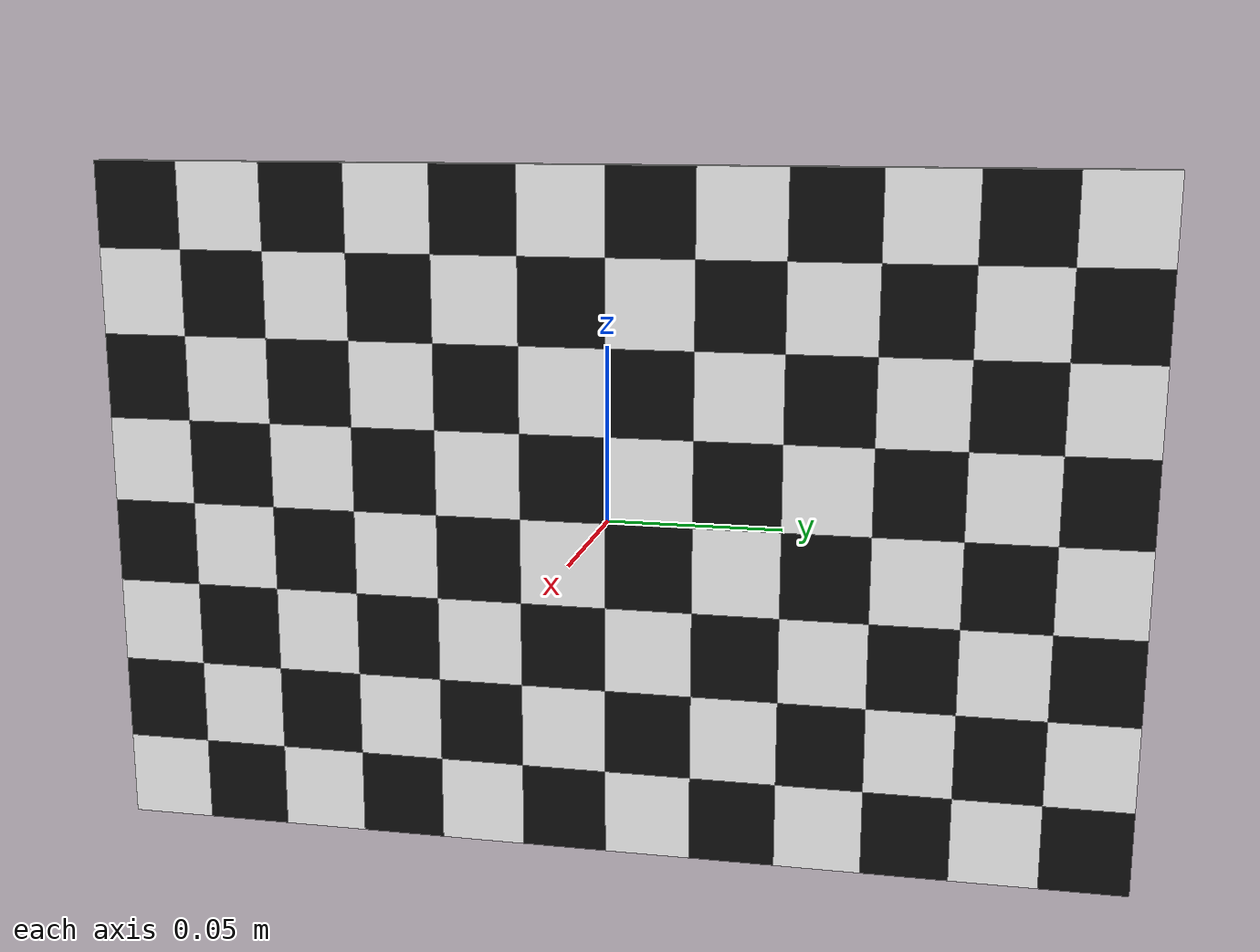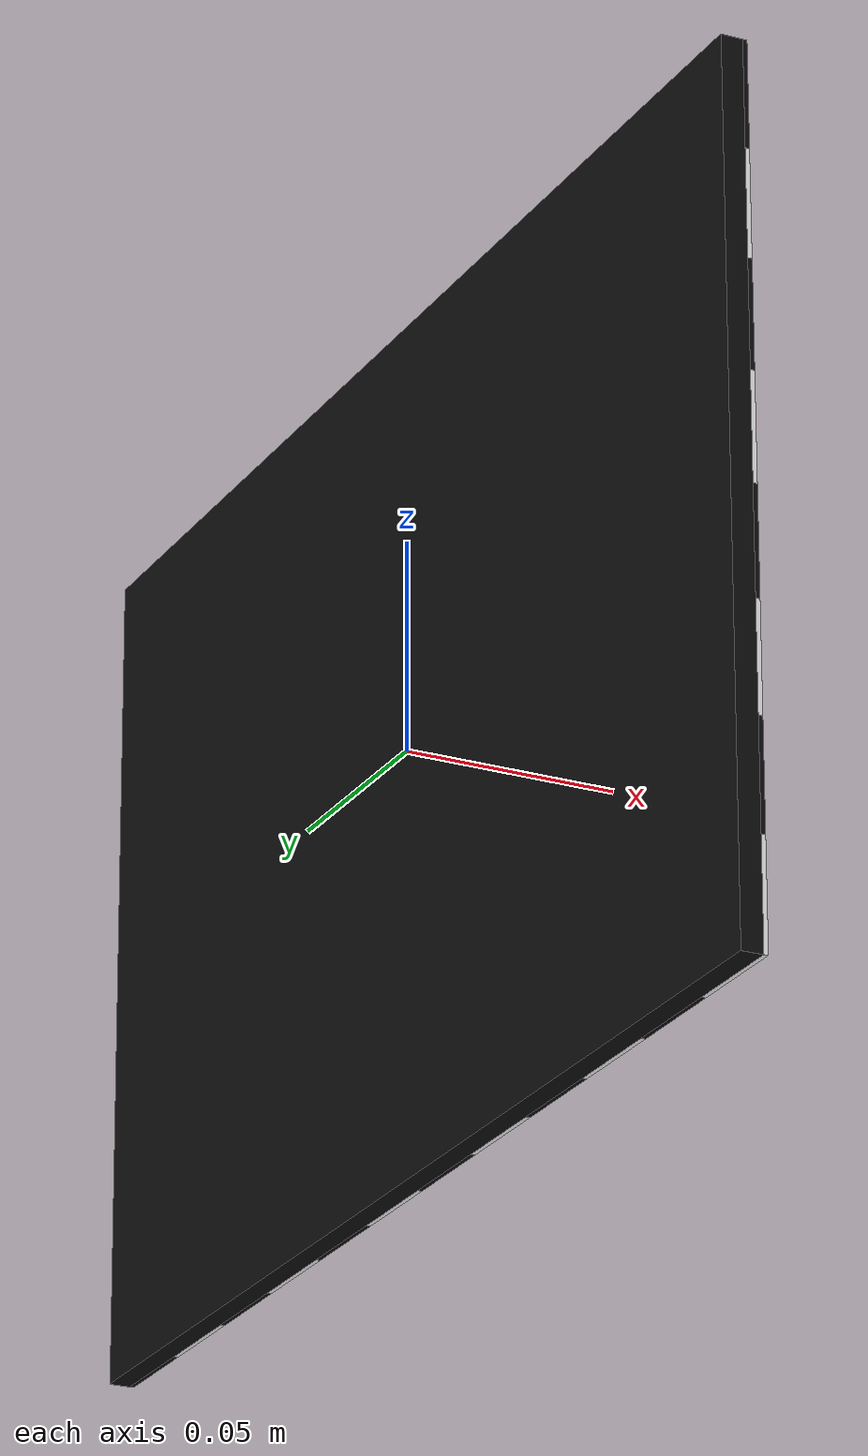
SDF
<?xml version='1.0' encoding='utf-8'?>
<sdf version="1.7">
  <model name="paper_calibration_target">
    <static>true</static>
    <link name="link">
      <visual name="backing">
        <pose>0 0 0 0 0 0</pose>
        <geometry>
          <box>
            <size>0.005 0.3000 0.2000</size>
          </box>
        </geometry>
        <cast_shadows>false</cast_shadows>
        <material>
          <ambient>0.05 0.05 0.05 1</ambient>
          <diffuse>0.05 0.05 0.05 1</diffuse>
          <specular>0.02 0.02 0.02 1</specular>
        </material>
        <plugin filename="ignition-gazebo-thermal-system" name="ignition::gazebo::systems::Thermal">
          <temperature>288.15</temperature>
        </plugin>
      </visual>
      <collision name="collision">
        <geometry>
          <box>
            <size>0.005 0.3000 0.2000</size>
          </box>
        </geometry>
      </collision>
      <visual name="tile_0_0">
        <pose>0.0030 0.1375 0.0875 0 0 0</pose>
        <geometry>
          <box>
            <size>0.001 0.0250 0.0250</size>
          </box>
        </geometry>
        <cast_shadows>false</cast_shadows>
        <material>
          <ambient>0.92 0.92 0.92 1</ambient>
          <diffuse>0.92 0.92 0.92 1</diffuse>
          <specular>0.02 0.02 0.02 1</specular>
        </material>
        <plugin filename="ignition-gazebo-thermal-system" name="ignition::gazebo::systems::Thermal">
          <temperature>318.15</temperature>
        </plugin>
      </visual>
      <visual name="tile_0_1">
        <pose>0.0030 0.1125 0.0875 0 0 0</pose>
        <geometry>
          <box>
            <size>0.001 0.0250 0.0250</size>
          </box>
        </geometry>
        <cast_shadows>false</cast_shadows>
        <material>
          <ambient>0.05 0.05 0.05 1</ambient>
          <diffuse>0.05 0.05 0.05 1</diffuse>
          <specular>0.02 0.02 0.02 1</specular>
        </material>
        <plugin filename="ignition-gazebo-thermal-system" name="ignition::gazebo::systems::Thermal">
          <temperature>318.15</temperature>
        </plugin>
      </visual>
      <visual name="tile_0_2">
        <pose>0.0030 0.0875 0.0875 0 0 0</pose>
        <geometry>
          <box>
            <size>0.001 0.0250 0.0250</size>
          </box>
        </geometry>
        <cast_shadows>false</cast_shadows>
        <material>
          <ambient>0.92 0.92 0.92 1</ambient>
          <diffuse>0.92 0.92 0.92 1</diffuse>
          <specular>0.02 0.02 0.02 1</specular>
        </material>
        <plugin filename="ignition-gazebo-thermal-system" name="ignition::gazebo::systems::Thermal">
          <temperature>288.15</temperature>
        </plugin>
      </visual>
      <visual name="tile_0_3">
        <pose>0.0030 0.0625 0.0875 0 0 0</pose>
        <geometry>
          <box>
            <size>0.001 0.0250 0.0250</size>
          </box>
        </geometry>
        <cast_shadows>false</cast_shadows>
        <material>
          <ambient>0.05 0.05 0.05 1</ambient>
          <diffuse>0.05 0.05 0.05 1</diffuse>
          <specular>0.02 0.02 0.02 1</specular>
        </material>
        <plugin filename="ignition-gazebo-thermal-system" name="ignition::gazebo::systems::Thermal">
          <temperature>288.15</temperature>
        </plugin>
      </visual>
      <visual name="tile_0_4">
        <pose>0.0030 0.0375 0.0875 0 0 0</pose>
        <geometry>
          <box>
            <size>0.001 0.0250 0.0250</size>
          </box>
        </geometry>
        <cast_shadows>false</cast_shadows>
        <material>
          <ambient>0.92 0.92 0.92 1</ambient>
          <diffuse>0.92 0.92 0.92 1</diffuse>
          <specular>0.02 0.02 0.02 1</specular>
        </material>
        <plugin filename="ignition-gazebo-thermal-system" name="ignition::gazebo::systems::Thermal">
          <temperature>318.15</temperature>
        </plugin>
      </visual>
      <visual name="tile_0_5">
        <pose>0.0030 0.0125 0.0875 0 0 0</pose>
        <geometry>
          <box>
            <size>0.001 0.0250 0.0250</size>
          </box>
        </geometry>
        <cast_shadows>false</cast_shadows>
        <material>
          <ambient>0.05 0.05 0.05 1</ambient>
          <diffuse>0.05 0.05 0.05 1</diffuse>
          <specular>0.02 0.02 0.02 1</specular>
        </material>
        <plugin filename="ignition-gazebo-thermal-system" name="ignition::gazebo::systems::Thermal">
          <temperature>318.15</temperature>
        </plugin>
      </visual>
      <visual name="tile_0_6">
        <pose>0.0030 -0.0125 0.0875 0 0 0</pose>
        <geometry>
          <box>
            <size>0.001 0.0250 0.0250</size>
          </box>
        </geometry>
        <cast_shadows>false</cast_shadows>
        <material>
          <ambient>0.92 0.92 0.92 1</ambient>
          <diffuse>0.92 0.92 0.92 1</diffuse>
          <specular>0.02 0.02 0.02 1</specular>
        </material>
        <plugin filename="ignition-gazebo-thermal-system" name="ignition::gazebo::systems::Thermal">
          <temperature>288.15</temperature>
        </plugin>
      </visual>
      <visual name="tile_0_7">
        <pose>0.0030 -0.0375 0.0875 0 0 0</pose>
        <geometry>
          <box>
            <size>0.001 0.0250 0.0250</size>
          </box>
        </geometry>
        <cast_shadows>false</cast_shadows>
        <material>
          <ambient>0.05 0.05 0.05 1</ambient>
          <diffuse>0.05 0.05 0.05 1</diffuse>
          <specular>0.02 0.02 0.02 1</specular>
        </material>
        <plugin filename="ignition-gazebo-thermal-system" name="ignition::gazebo::systems::Thermal">
          <temperature>288.15</temperature>
        </plugin>
      </visual>
      <visual name="tile_0_8">
        <pose>0.0030 -0.0625 0.0875 0 0 0</pose>
        <geometry>
          <box>
            <size>0.001 0.0250 0.0250</size>
          </box>
        </geometry>
        <cast_shadows>false</cast_shadows>
        <material>
          <ambient>0.92 0.92 0.92 1</ambient>
          <diffuse>0.92 0.92 0.92 1</diffuse>
          <specular>0.02 0.02 0.02 1</specular>
        </material>
        <plugin filename="ignition-gazebo-thermal-system" name="ignition::gazebo::systems::Thermal">
          <temperature>318.15</temperature>
        </plugin>
      </visual>
      <visual name="tile_0_9">
        <pose>0.0030 -0.0875 0.0875 0 0 0</pose>
        <geometry>
          <box>
            <size>0.001 0.0250 0.0250</size>
          </box>
        </geometry>
        <cast_shadows>false</cast_shadows>
        <material>
          <ambient>0.05 0.05 0.05 1</ambient>
          <diffuse>0.05 0.05 0.05 1</diffuse>
          <specular>0.02 0.02 0.02 1</specular>
        </material>
        <plugin filename="ignition-gazebo-thermal-system" name="ignition::gazebo::systems::Thermal">
          <temperature>318.15</temperature>
        </plugin>
      </visual>
      <visual name="tile_0_10">
        <pose>0.0030 -0.1125 0.0875 0 0 0</pose>
        <geometry>
          <box>
            <size>0.001 0.0250 0.0250</size>
          </box>
        </geometry>
        <cast_shadows>false</cast_shadows>
        <material>
          <ambient>0.92 0.92 0.92 1</ambient>
          <diffuse>0.92 0.92 0.92 1</diffuse>
          <specular>0.02 0.02 0.02 1</specular>
        </material>
        <plugin filename="ignition-gazebo-thermal-system" name="ignition::gazebo::systems::Thermal">
          <temperature>288.15</temperature>
        </plugin>
      </visual>
      <visual name="tile_0_11">
        <pose>0.0030 -0.1375 0.0875 0 0 0</pose>
        <geometry>
          <box>
            <size>0.001 0.0250 0.0250</size>
          </box>
        </geometry>
        <cast_shadows>false</cast_shadows>
        <material>
          <ambient>0.05 0.05 0.05 1</ambient>
          <diffuse>0.05 0.05 0.05 1</diffuse>
          <specular>0.02 0.02 0.02 1</specular>
        </material>
        <plugin filename="ignition-gazebo-thermal-system" name="ignition::gazebo::systems::Thermal">
          <temperature>288.15</temperature>
        </plugin>
      </visual>
      <visual name="tile_1_0">
        <pose>0.0030 0.1375 0.0625 0 0 0</pose>
        <geometry>
          <box>
            <size>0.001 0.0250 0.0250</size>
          </box>
        </geometry>
        <cast_shadows>false</cast_shadows>
        <material>
          <ambient>0.05 0.05 0.05 1</ambient>
          <diffuse>0.05 0.05 0.05 1</diffuse>
          <specular>0.02 0.02 0.02 1</specular>
        </material>
        <plugin filename="ignition-gazebo-thermal-system" name="ignition::gazebo::systems::Thermal">
          <temperature>318.15</temperature>
        </plugin>
      </visual>
      <visual name="tile_1_1">
        <pose>0.0030 0.1125 0.0625 0 0 0</pose>
        <geometry>
          <box>
            <size>0.001 0.0250 0.0250</size>
          </box>
        </geometry>
        <cast_shadows>false</cast_shadows>
        <material>
          <ambient>0.92 0.92 0.92 1</ambient>
          <diffuse>0.92 0.92 0.92 1</diffuse>
          <specular>0.02 0.02 0.02 1</specular>
        </material>
        <plugin filename="ignition-gazebo-thermal-system" name="ignition::gazebo::systems::Thermal">
          <temperature>318.15</temperature>
        </plugin>
      </visual>
      <visual name="tile_1_2">
        <pose>0.0030 0.0875 0.0625 0 0 0</pose>
        <geometry>
          <box>
            <size>0.001 0.0250 0.0250</size>
          </box>
        </geometry>
        <cast_shadows>false</cast_shadows>
        <material>
          <ambient>0.05 0.05 0.05 1</ambient>
          <diffuse>0.05 0.05 0.05 1</diffuse>
          <specular>0.02 0.02 0.02 1</specular>
        </material>
        <plugin filename="ignition-gazebo-thermal-system" name="ignition::gazebo::systems::Thermal">
          <temperature>288.15</temperature>
        </plugin>
      </visual>
      <visual name="tile_1_3">
        <pose>0.0030 0.0625 0.0625 0 0 0</pose>
        <geometry>
          <box>
            <size>0.001 0.0250 0.0250</size>
          </box>
        </geometry>
        <cast_shadows>false</cast_shadows>
        <material>
          <ambient>0.92 0.92 0.92 1</ambient>
          <diffuse>0.92 0.92 0.92 1</diffuse>
          <specular>0.02 0.02 0.02 1</specular>
        </material>
        <plugin filename="ignition-gazebo-thermal-system" name="ignition::gazebo::systems::Thermal">
          <temperature>288.15</temperature>
        </plugin>
      </visual>
      <visual name="tile_1_4">
        <pose>0.0030 0.0375 0.0625 0 0 0</pose>
        <geometry>
          <box>
            <size>0.001 0.0250 0.0250</size>
          </box>
        </geometry>
        <cast_shadows>false</cast_shadows>
        <material>
          <ambient>0.05 0.05 0.05 1</ambient>
          <diffuse>0.05 0.05 0.05 1</diffuse>
          <specular>0.02 0.02 0.02 1</specular>
        </material>
        <plugin filename="ignition-gazebo-thermal-system" name="ignition::gazebo::systems::Thermal">
          <temperature>318.15</temperature>
        </plugin>
      </visual>
      <visual name="tile_1_5">
        <pose>0.0030 0.0125 0.0625 0 0 0</pose>
        <geometry>
          <box>
            <size>0.001 0.0250 0.0250</size>
          </box>
        </geometry>
        <cast_shadows>false</cast_shadows>
        <material>
          <ambient>0.92 0.92 0.92 1</ambient>
          <diffuse>0.92 0.92 0.92 1</diffuse>
          <specular>0.02 0.02 0.02 1</specular>
        </material>
        <plugin filename="ignition-gazebo-thermal-system" name="ignition::gazebo::systems::Thermal">
          <temperature>318.15</temperature>
        </plugin>
      </visual>
      <visual name="tile_1_6">
        <pose>0.0030 -0.0125 0.0625 0 0 0</pose>
        <geometry>
          <box>
            <size>0.001 0.0250 0.0250</size>
          </box>
        </geometry>
        <cast_shadows>false</cast_shadows>
        <material>
          <ambient>0.05 0.05 0.05 1</ambient>
          <diffuse>0.05 0.05 0.05 1</diffuse>
          <specular>0.02 0.02 0.02 1</specular>
        </material>
        <plugin filename="ignition-gazebo-thermal-system" name="ignition::gazebo::systems::Thermal">
          <temperature>288.15</temperature>
        </plugin>
      </visual>
      <visual name="tile_1_7">
        <pose>0.0030 -0.0375 0.0625 0 0 0</pose>
        <geometry>
          <box>
            <size>0.001 0.0250 0.0250</size>
          </box>
        </geometry>
        <cast_shadows>false</cast_shadows>
        <material>
          <ambient>0.92 0.92 0.92 1</ambient>
          <diffuse>0.92 0.92 0.92 1</diffuse>
          <specular>0.02 0.02 0.02 1</specular>
        </material>
        <plugin filename="ignition-gazebo-thermal-system" name="ignition::gazebo::systems::Thermal">
          <temperature>288.15</temperature>
        </plugin>
      </visual>
      <visual name="tile_1_8">
        <pose>0.0030 -0.0625 0.0625 0 0 0</pose>
        <geometry>
          <box>
            <size>0.001 0.0250 0.0250</size>
          </box>
        </geometry>
        <cast_shadows>false</cast_shadows>
        <material>
          <ambient>0.05 0.05 0.05 1</ambient>
          <diffuse>0.05 0.05 0.05 1</diffuse>
          <specular>0.02 0.02 0.02 1</specular>
        </material>
        <plugin filename="ignition-gazebo-thermal-system" name="ignition::gazebo::systems::Thermal">
          <temperature>318.15</temperature>
        </plugin>
      </visual>
      <visual name="tile_1_9">
        <pose>0.0030 -0.0875 0.0625 0 0 0</pose>
        <geometry>
          <box>
            <size>0.001 0.0250 0.0250</size>
          </box>
        </geometry>
        <cast_shadows>false</cast_shadows>
        <material>
          <ambient>0.92 0.92 0.92 1</ambient>
          <diffuse>0.92 0.92 0.92 1</diffuse>
          <specular>0.02 0.02 0.02 1</specular>
        </material>
        <plugin filename="ignition-gazebo-thermal-system" name="ignition::gazebo::systems::Thermal">
          <temperature>318.15</temperature>
        </plugin>
      </visual>
      <visual name="tile_1_10">
        <pose>0.0030 -0.1125 0.0625 0 0 0</pose>
        <geometry>
          <box>
            <size>0.001 0.0250 0.0250</size>
          </box>
        </geometry>
        <cast_shadows>false</cast_shadows>
        <material>
          <ambient>0.05 0.05 0.05 1</ambient>
          <diffuse>0.05 0.05 0.05 1</diffuse>
          <specular>0.02 0.02 0.02 1</specular>
        </material>
        <plugin filename="ignition-gazebo-thermal-system" name="ignition::gazebo::systems::Thermal">
          <temperature>288.15</temperature>
        </plugin>
      </visual>
      <visual name="tile_1_11">
        <pose>0.0030 -0.1375 0.0625 0 0 0</pose>
        <geometry>
          <box>
            <size>0.001 0.0250 0.0250</size>
          </box>
        </geometry>
        <cast_shadows>false</cast_shadows>
        <material>
          <ambient>0.92 0.92 0.92 1</ambient>
          <diffuse>0.92 0.92 0.92 1</diffuse>
          <specular>0.02 0.02 0.02 1</specular>
        </material>
        <plugin filename="ignition-gazebo-thermal-system" name="ignition::gazebo::systems::Thermal">
          <temperature>288.15</temperature>
        </plugin>
      </visual>
      <visual name="tile_2_0">
        <pose>0.0030 0.1375 0.0375 0 0 0</pose>
        <geometry>
          <box>
            <size>0.001 0.0250 0.0250</size>
          </box>
        </geometry>
        <cast_shadows>false</cast_shadows>
        <material>
          <ambient>0.92 0.92 0.92 1</ambient>
          <diffuse>0.92 0.92 0.92 1</diffuse>
          <specular>0.02 0.02 0.02 1</specular>
        </material>
        <plugin filename="ignition-gazebo-thermal-system" name="ignition::gazebo::systems::Thermal">
          <temperature>288.15</temperature>
        </plugin>
      </visual>
      <visual name="tile_2_1">
        <pose>0.0030 0.1125 0.0375 0 0 0</pose>
        <geometry>
          <box>
            <size>0.001 0.0250 0.0250</size>
          </box>
        </geometry>
        <cast_shadows>false</cast_shadows>
        <material>
          <ambient>0.05 0.05 0.05 1</ambient>
          <diffuse>0.05 0.05 0.05 1</diffuse>
          <specular>0.02 0.02 0.02 1</specular>
        </material>
        <plugin filename="ignition-gazebo-thermal-system" name="ignition::gazebo::systems::Thermal">
          <temperature>288.15</temperature>
        </plugin>
      </visual>
      <visual name="tile_2_2">
        <pose>0.0030 0.0875 0.0375 0 0 0</pose>
        <geometry>
          <box>
            <size>0.001 0.0250 0.0250</size>
          </box>
        </geometry>
        <cast_shadows>false</cast_shadows>
        <material>
          <ambient>0.92 0.92 0.92 1</ambient>
          <diffuse>0.92 0.92 0.92 1</diffuse>
          <specular>0.02 0.02 0.02 1</specular>
        </material>
        <plugin filename="ignition-gazebo-thermal-system" name="ignition::gazebo::systems::Thermal">
          <temperature>318.15</temperature>
        </plugin>
      </visual>
      <visual name="tile_2_3">
        <pose>0.0030 0.0625 0.0375 0 0 0</pose>
        <geometry>
          <box>
            <size>0.001 0.0250 0.0250</size>
          </box>
        </geometry>
        <cast_shadows>false</cast_shadows>
        <material>
          <ambient>0.05 0.05 0.05 1</ambient>
          <diffuse>0.05 0.05 0.05 1</diffuse>
          <specular>0.02 0.02 0.02 1</specular>
        </material>
        <plugin filename="ignition-gazebo-thermal-system" name="ignition::gazebo::systems::Thermal">
          <temperature>318.15</temperature>
        </plugin>
      </visual>
      <visual name="tile_2_4">
        <pose>0.0030 0.0375 0.0375 0 0 0</pose>
        <geometry>
          <box>
            <size>0.001 0.0250 0.0250</size>
          </box>
        </geometry>
        <cast_shadows>false</cast_shadows>
        <material>
          <ambient>0.92 0.92 0.92 1</ambient>
          <diffuse>0.92 0.92 0.92 1</diffuse>
          <specular>0.02 0.02 0.02 1</specular>
        </material>
        <plugin filename="ignition-gazebo-thermal-system" name="ignition::gazebo::systems::Thermal">
          <temperature>288.15</temperature>
        </plugin>
      </visual>
      <visual name="tile_2_5">
        <pose>0.0030 0.0125 0.0375 0 0 0</pose>
        <geometry>
          <box>
            <size>0.001 0.0250 0.0250</size>
          </box>
        </geometry>
        <cast_shadows>false</cast_shadows>
        <material>
          <ambient>0.05 0.05 0.05 1</ambient>
          <diffuse>0.05 0.05 0.05 1</diffuse>
          <specular>0.02 0.02 0.02 1</specular>
        </material>
        <plugin filename="ignition-gazebo-thermal-system" name="ignition::gazebo::systems::Thermal">
          <temperature>288.15</temperature>
        </plugin>
      </visual>
      <visual name="tile_2_6">
        <pose>0.0030 -0.0125 0.0375 0 0 0</pose>
        <geometry>
          <box>
            <size>0.001 0.0250 0.0250</size>
          </box>
        </geometry>
        <cast_shadows>false</cast_shadows>
        <material>
          <ambient>0.92 0.92 0.92 1</ambient>
          <diffuse>0.92 0.92 0.92 1</diffuse>
          <specular>0.02 0.02 0.02 1</specular>
        </material>
        <plugin filename="ignition-gazebo-thermal-system" name="ignition::gazebo::systems::Thermal">
          <temperature>318.15</temperature>
        </plugin>
      </visual>
      <visual name="tile_2_7">
        <pose>0.0030 -0.0375 0.0375 0 0 0</pose>
        <geometry>
          <box>
            <size>0.001 0.0250 0.0250</size>
          </box>
        </geometry>
        <cast_shadows>false</cast_shadows>
        <material>
          <ambient>0.05 0.05 0.05 1</ambient>
          <diffuse>0.05 0.05 0.05 1</diffuse>
          <specular>0.02 0.02 0.02 1</specular>
        </material>
        <plugin filename="ignition-gazebo-thermal-system" name="ignition::gazebo::systems::Thermal">
          <temperature>318.15</temperature>
        </plugin>
      </visual>
      <visual name="tile_2_8">
        <pose>0.0030 -0.0625 0.0375 0 0 0</pose>
        <geometry>
          <box>
            <size>0.001 0.0250 0.0250</size>
          </box>
        </geometry>
        <cast_shadows>false</cast_shadows>
        <material>
          <ambient>0.92 0.92 0.92 1</ambient>
          <diffuse>0.92 0.92 0.92 1</diffuse>
          <specular>0.02 0.02 0.02 1</specular>
        </material>
        <plugin filename="ignition-gazebo-thermal-system" name="ignition::gazebo::systems::Thermal">
          <temperature>288.15</temperature>
        </plugin>
      </visual>
      <visual name="tile_2_9">
        <pose>0.0030 -0.0875 0.0375 0 0 0</pose>
        <geometry>
          <box>
            <size>0.001 0.0250 0.0250</size>
          </box>
        </geometry>
        <cast_shadows>false</cast_shadows>
        <material>
          <ambient>0.05 0.05 0.05 1</ambient>
          <diffuse>0.05 0.05 0.05 1</diffuse>
          <specular>0.02 0.02 0.02 1</specular>
        </material>
        <plugin filename="ignition-gazebo-thermal-system" name="ignition::gazebo::systems::Thermal">
          <temperature>288.15</temperature>
        </plugin>
      </visual>
      <visual name="tile_2_10">
        <pose>0.0030 -0.1125 0.0375 0 0 0</pose>
        <geometry>
          <box>
            <size>0.001 0.0250 0.0250</size>
          </box>
        </geometry>
        <cast_shadows>false</cast_shadows>
        <material>
          <ambient>0.92 0.92 0.92 1</ambient>
          <diffuse>0.92 0.92 0.92 1</diffuse>
          <specular>0.02 0.02 0.02 1</specular>
        </material>
        <plugin filename="ignition-gazebo-thermal-system" name="ignition::gazebo::systems::Thermal">
          <temperature>318.15</temperature>
        </plugin>
      </visual>
      <visual name="tile_2_11">
        <pose>0.0030 -0.1375 0.0375 0 0 0</pose>
        <geometry>
          <box>
            <size>0.001 0.0250 0.0250</size>
          </box>
        </geometry>
        <cast_shadows>false</cast_shadows>
        <material>
          <ambient>0.05 0.05 0.05 1</ambient>
          <diffuse>0.05 0.05 0.05 1</diffuse>
          <specular>0.02 0.02 0.02 1</specular>
        </material>
        <plugin filename="ignition-gazebo-thermal-system" name="ignition::gazebo::systems::Thermal">
          <temperature>318.15</temperature>
        </plugin>
      </visual>
      <visual name="tile_3_0">
        <pose>0.0030 0.1375 0.0125 0 0 0</pose>
        <geometry>
          <box>
            <size>0.001 0.0250 0.0250</size>
          </box>
        </geometry>
        <cast_shadows>false</cast_shadows>
        <material>
          <ambient>0.05 0.05 0.05 1</ambient>
          <diffuse>0.05 0.05 0.05 1</diffuse>
          <specular>0.02 0.02 0.02 1</specular>
        </material>
        <plugin filename="ignition-gazebo-thermal-system" name="ignition::gazebo::systems::Thermal">
          <temperature>288.15</temperature>
        </plugin>
      </visual>
      <visual name="tile_3_1">
        <pose>0.0030 0.1125 0.0125 0 0 0</pose>
        <geometry>
          <box>
            <size>0.001 0.0250 0.0250</size>
          </box>
        </geometry>
        <cast_shadows>false</cast_shadows>
        <material>
          <ambient>0.92 0.92 0.92 1</ambient>
          <diffuse>0.92 0.92 0.92 1</diffuse>
          <specular>0.02 0.02 0.02 1</specular>
        </material>
        <plugin filename="ignition-gazebo-thermal-system" name="ignition::gazebo::systems::Thermal">
          <temperature>288.15</temperature>
        </plugin>
      </visual>
      <visual name="tile_3_2">
        <pose>0.0030 0.0875 0.0125 0 0 0</pose>
        <geometry>
          <box>
            <size>0.001 0.0250 0.0250</size>
          </box>
        </geometry>
        <cast_shadows>false</cast_shadows>
        <material>
          <ambient>0.05 0.05 0.05 1</ambient>
          <diffuse>0.05 0.05 0.05 1</diffuse>
          <specular>0.02 0.02 0.02 1</specular>
        </material>
        <plugin filename="ignition-gazebo-thermal-system" name="ignition::gazebo::systems::Thermal">
          <temperature>318.15</temperature>
        </plugin>
      </visual>
      <visual name="tile_3_3">
        <pose>0.0030 0.0625 0.0125 0 0 0</pose>
        <geometry>
          <box>
            <size>0.001 0.0250 0.0250</size>
          </box>
        </geometry>
        <cast_shadows>false</cast_shadows>
        <material>
          <ambient>0.92 0.92 0.92 1</ambient>
          <diffuse>0.92 0.92 0.92 1</diffuse>
          <specular>0.02 0.02 0.02 1</specular>
        </material>
        <plugin filename="ignition-gazebo-thermal-system" name="ignition::gazebo::systems::Thermal">
          <temperature>318.15</temperature>
        </plugin>
      </visual>
      <visual name="tile_3_4">
        <pose>0.0030 0.0375 0.0125 0 0 0</pose>
        <geometry>
          <box>
            <size>0.001 0.0250 0.0250</size>
          </box>
        </geometry>
        <cast_shadows>false</cast_shadows>
        <material>
          <ambient>0.05 0.05 0.05 1</ambient>
          <diffuse>0.05 0.05 0.05 1</diffuse>
          <specular>0.02 0.02 0.02 1</specular>
        </material>
        <plugin filename="ignition-gazebo-thermal-system" name="ignition::gazebo::systems::Thermal">
          <temperature>288.15</temperature>
        </plugin>
      </visual>
      <visual name="tile_3_5">
        <pose>0.0030 0.0125 0.0125 0 0 0</pose>
        <geometry>
          <box>
            <size>0.001 0.0250 0.0250</size>
          </box>
        </geometry>
        <cast_shadows>false</cast_shadows>
        <material>
          <ambient>0.92 0.92 0.92 1</ambient>
          <diffuse>0.92 0.92 0.92 1</diffuse>
          <specular>0.02 0.02 0.02 1</specular>
        </material>
        <plugin filename="ignition-gazebo-thermal-system" name="ignition::gazebo::systems::Thermal">
          <temperature>288.15</temperature>
        </plugin>
      </visual>
      <visual name="tile_3_6">
        <pose>0.0030 -0.0125 0.0125 0 0 0</pose>
        <geometry>
          <box>
            <size>0.001 0.0250 0.0250</size>
          </box>
        </geometry>
        <cast_shadows>false</cast_shadows>
        <material>
          <ambient>0.05 0.05 0.05 1</ambient>
          <diffuse>0.05 0.05 0.05 1</diffuse>
          <specular>0.02 0.02 0.02 1</specular>
        </material>
        <plugin filename="ignition-gazebo-thermal-system" name="ignition::gazebo::systems::Thermal">
          <temperature>318.15</temperature>
        </plugin>
      </visual>
      <visual name="tile_3_7">
        <pose>0.0030 -0.0375 0.0125 0 0 0</pose>
        <geometry>
          <box>
            <size>0.001 0.0250 0.0250</size>
          </box>
        </geometry>
        <cast_shadows>false</cast_shadows>
        <material>
          <ambient>0.92 0.92 0.92 1</ambient>
          <diffuse>0.92 0.92 0.92 1</diffuse>
          <specular>0.02 0.02 0.02 1</specular>
        </material>
        <plugin filename="ignition-gazebo-thermal-system" name="ignition::gazebo::systems::Thermal">
          <temperature>318.15</temperature>
        </plugin>
      </visual>
      <visual name="tile_3_8">
        <pose>0.0030 -0.0625 0.0125 0 0 0</pose>
        <geometry>
          <box>
            <size>0.001 0.0250 0.0250</size>
          </box>
        </geometry>
        <cast_shadows>false</cast_shadows>
        <material>
          <ambient>0.05 0.05 0.05 1</ambient>
          <diffuse>0.05 0.05 0.05 1</diffuse>
          <specular>0.02 0.02 0.02 1</specular>
        </material>
        <plugin filename="ignition-gazebo-thermal-system" name="ignition::gazebo::systems::Thermal">
          <temperature>288.15</temperature>
        </plugin>
      </visual>
      <visual name="tile_3_9">
        <pose>0.0030 -0.0875 0.0125 0 0 0</pose>
        <geometry>
          <box>
            <size>0.001 0.0250 0.0250</size>
          </box>
        </geometry>
        <cast_shadows>false</cast_shadows>
        <material>
          <ambient>0.92 0.92 0.92 1</ambient>
          <diffuse>0.92 0.92 0.92 1</diffuse>
          <specular>0.02 0.02 0.02 1</specular>
        </material>
        <plugin filename="ignition-gazebo-thermal-system" name="ignition::gazebo::systems::Thermal">
          <temperature>288.15</temperature>
        </plugin>
      </visual>
      <visual name="tile_3_10">
        <pose>0.0030 -0.1125 0.0125 0 0 0</pose>
        <geometry>
          <box>
            <size>0.001 0.0250 0.0250</size>
          </box>
        </geometry>
        <cast_shadows>false</cast_shadows>
        <material>
          <ambient>0.05 0.05 0.05 1</ambient>
          <diffuse>0.05 0.05 0.05 1</diffuse>
          <specular>0.02 0.02 0.02 1</specular>
        </material>
        <plugin filename="ignition-gazebo-thermal-system" name="ignition::gazebo::systems::Thermal">
          <temperature>318.15</temperature>
        </plugin>
      </visual>
      <visual name="tile_3_11">
        <pose>0.0030 -0.1375 0.0125 0 0 0</pose>
        <geometry>
          <box>
            <size>0.001 0.0250 0.0250</size>
          </box>
        </geometry>
        <cast_shadows>false</cast_shadows>
        <material>
          <ambient>0.92 0.92 0.92 1</ambient>
          <diffuse>0.92 0.92 0.92 1</diffuse>
          <specular>0.02 0.02 0.02 1</specular>
        </material>
        <plugin filename="ignition-gazebo-thermal-system" name="ignition::gazebo::systems::Thermal">
          <temperature>318.15</temperature>
        </plugin>
      </visual>
      <visual name="tile_4_0">
        <pose>0.0030 0.1375 -0.0125 0 0 0</pose>
        <geometry>
          <box>
            <size>0.001 0.0250 0.0250</size>
          </box>
        </geometry>
        <cast_shadows>false</cast_shadows>
        <material>
          <ambient>0.92 0.92 0.92 1</ambient>
          <diffuse>0.92 0.92 0.92 1</diffuse>
          <specular>0.02 0.02 0.02 1</specular>
        </material>
        <plugin filename="ignition-gazebo-thermal-system" name="ignition::gazebo::systems::Thermal">
          <temperature>318.15</temperature>
        </plugin>
      </visual>
      <visual name="tile_4_1">
        <pose>0.0030 0.1125 -0.0125 0 0 0</pose>
        <geometry>
          <box>
            <size>0.001 0.0250 0.0250</size>
          </box>
        </geometry>
        <cast_shadows>false</cast_shadows>
        <material>
          <ambient>0.05 0.05 0.05 1</ambient>
          <diffuse>0.05 0.05 0.05 1</diffuse>
          <specular>0.02 0.02 0.02 1</specular>
        </material>
        <plugin filename="ignition-gazebo-thermal-system" name="ignition::gazebo::systems::Thermal">
          <temperature>318.15</temperature>
        </plugin>
      </visual>
      <visual name="tile_4_2">
        <pose>0.0030 0.0875 -0.0125 0 0 0</pose>
        <geometry>
          <box>
            <size>0.001 0.0250 0.0250</size>
          </box>
        </geometry>
        <cast_shadows>false</cast_shadows>
        <material>
          <ambient>0.92 0.92 0.92 1</ambient>
          <diffuse>0.92 0.92 0.92 1</diffuse>
          <specular>0.02 0.02 0.02 1</specular>
        </material>
        <plugin filename="ignition-gazebo-thermal-system" name="ignition::gazebo::systems::Thermal">
          <temperature>288.15</temperature>
        </plugin>
      </visual>
      <visual name="tile_4_3">
        <pose>0.0030 0.0625 -0.0125 0 0 0</pose>
        <geometry>
          <box>
            <size>0.001 0.0250 0.0250</size>
          </box>
        </geometry>
        <cast_shadows>false</cast_shadows>
        <material>
          <ambient>0.05 0.05 0.05 1</ambient>
          <diffuse>0.05 0.05 0.05 1</diffuse>
          <specular>0.02 0.02 0.02 1</specular>
        </material>
        <plugin filename="ignition-gazebo-thermal-system" name="ignition::gazebo::systems::Thermal">
          <temperature>288.15</temperature>
        </plugin>
      </visual>
      <visual name="tile_4_4">
        <pose>0.0030 0.0375 -0.0125 0 0 0</pose>
        <geometry>
          <box>
            <size>0.001 0.0250 0.0250</size>
          </box>
        </geometry>
        <cast_shadows>false</cast_shadows>
        <material>
          <ambient>0.92 0.92 0.92 1</ambient>
          <diffuse>0.92 0.92 0.92 1</diffuse>
          <specular>0.02 0.02 0.02 1</specular>
        </material>
        <plugin filename="ignition-gazebo-thermal-system" name="ignition::gazebo::systems::Thermal">
          <temperature>318.15</temperature>
        </plugin>
      </visual>
      <visual name="tile_4_5">
        <pose>0.0030 0.0125 -0.0125 0 0 0</pose>
        <geometry>
          <box>
            <size>0.001 0.0250 0.0250</size>
          </box>
        </geometry>
        <cast_shadows>false</cast_shadows>
        <material>
          <ambient>0.05 0.05 0.05 1</ambient>
          <diffuse>0.05 0.05 0.05 1</diffuse>
          <specular>0.02 0.02 0.02 1</specular>
        </material>
        <plugin filename="ignition-gazebo-thermal-system" name="ignition::gazebo::systems::Thermal">
          <temperature>318.15</temperature>
        </plugin>
      </visual>
      <visual name="tile_4_6">
        <pose>0.0030 -0.0125 -0.0125 0 0 0</pose>
        <geometry>
          <box>
            <size>0.001 0.0250 0.0250</size>
          </box>
        </geometry>
        <cast_shadows>false</cast_shadows>
        <material>
          <ambient>0.92 0.92 0.92 1</ambient>
          <diffuse>0.92 0.92 0.92 1</diffuse>
          <specular>0.02 0.02 0.02 1</specular>
        </material>
        <plugin filename="ignition-gazebo-thermal-system" name="ignition::gazebo::systems::Thermal">
          <temperature>288.15</temperature>
        </plugin>
      </visual>
      <visual name="tile_4_7">
        <pose>0.0030 -0.0375 -0.0125 0 0 0</pose>
        <geometry>
          <box>
            <size>0.001 0.0250 0.0250</size>
          </box>
        </geometry>
        <cast_shadows>false</cast_shadows>
        <material>
          <ambient>0.05 0.05 0.05 1</ambient>
          <diffuse>0.05 0.05 0.05 1</diffuse>
          <specular>0.02 0.02 0.02 1</specular>
        </material>
        <plugin filename="ignition-gazebo-thermal-system" name="ignition::gazebo::systems::Thermal">
          <temperature>288.15</temperature>
        </plugin>
      </visual>
      <visual name="tile_4_8">
        <pose>0.0030 -0.0625 -0.0125 0 0 0</pose>
        <geometry>
          <box>
            <size>0.001 0.0250 0.0250</size>
          </box>
        </geometry>
        <cast_shadows>false</cast_shadows>
        <material>
          <ambient>0.92 0.92 0.92 1</ambient>
          <diffuse>0.92 0.92 0.92 1</diffuse>
          <specular>0.02 0.02 0.02 1</specular>
        </material>
        <plugin filename="ignition-gazebo-thermal-system" name="ignition::gazebo::systems::Thermal">
          <temperature>318.15</temperature>
        </plugin>
      </visual>
      <visual name="tile_4_9">
        <pose>0.0030 -0.0875 -0.0125 0 0 0</pose>
        <geometry>
          <box>
            <size>0.001 0.0250 0.0250</size>
          </box>
        </geometry>
        <cast_shadows>false</cast_shadows>
        <material>
          <ambient>0.05 0.05 0.05 1</ambient>
          <diffuse>0.05 0.05 0.05 1</diffuse>
          <specular>0.02 0.02 0.02 1</specular>
        </material>
        <plugin filename="ignition-gazebo-thermal-system" name="ignition::gazebo::systems::Thermal">
          <temperature>318.15</temperature>
        </plugin>
      </visual>
      <visual name="tile_4_10">
        <pose>0.0030 -0.1125 -0.0125 0 0 0</pose>
        <geometry>
          <box>
            <size>0.001 0.0250 0.0250</size>
          </box>
        </geometry>
        <cast_shadows>false</cast_shadows>
        <material>
          <ambient>0.92 0.92 0.92 1</ambient>
          <diffuse>0.92 0.92 0.92 1</diffuse>
          <specular>0.02 0.02 0.02 1</specular>
        </material>
        <plugin filename="ignition-gazebo-thermal-system" name="ignition::gazebo::systems::Thermal">
          <temperature>288.15</temperature>
        </plugin>
      </visual>
      <visual name="tile_4_11">
        <pose>0.0030 -0.1375 -0.0125 0 0 0</pose>
        <geometry>
          <box>
            <size>0.001 0.0250 0.0250</size>
          </box>
        </geometry>
        <cast_shadows>false</cast_shadows>
        <material>
          <ambient>0.05 0.05 0.05 1</ambient>
          <diffuse>0.05 0.05 0.05 1</diffuse>
          <specular>0.02 0.02 0.02 1</specular>
        </material>
        <plugin filename="ignition-gazebo-thermal-system" name="ignition::gazebo::systems::Thermal">
          <temperature>288.15</temperature>
        </plugin>
      </visual>
      <visual name="tile_5_0">
        <pose>0.0030 0.1375 -0.0375 0 0 0</pose>
        <geometry>
          <box>
            <size>0.001 0.0250 0.0250</size>
          </box>
        </geometry>
        <cast_shadows>false</cast_shadows>
        <material>
          <ambient>0.05 0.05 0.05 1</ambient>
          <diffuse>0.05 0.05 0.05 1</diffuse>
          <specular>0.02 0.02 0.02 1</specular>
        </material>
        <plugin filename="ignition-gazebo-thermal-system" name="ignition::gazebo::systems::Thermal">
          <temperature>318.15</temperature>
        </plugin>
      </visual>
      <visual name="tile_5_1">
        <pose>0.0030 0.1125 -0.0375 0 0 0</pose>
        <geometry>
          <box>
            <size>0.001 0.0250 0.0250</size>
          </box>
        </geometry>
        <cast_shadows>false</cast_shadows>
        <material>
          <ambient>0.92 0.92 0.92 1</ambient>
          <diffuse>0.92 0.92 0.92 1</diffuse>
          <specular>0.02 0.02 0.02 1</specular>
        </material>
        <plugin filename="ignition-gazebo-thermal-system" name="ignition::gazebo::systems::Thermal">
          <temperature>318.15</temperature>
        </plugin>
      </visual>
      <visual name="tile_5_2">
        <pose>0.0030 0.0875 -0.0375 0 0 0</pose>
        <geometry>
          <box>
            <size>0.001 0.0250 0.0250</size>
          </box>
        </geometry>
        <cast_shadows>false</cast_shadows>
        <material>
          <ambient>0.05 0.05 0.05 1</ambient>
          <diffuse>0.05 0.05 0.05 1</diffuse>
          <specular>0.02 0.02 0.02 1</specular>
        </material>
        <plugin filename="ignition-gazebo-thermal-system" name="ignition::gazebo::systems::Thermal">
          <temperature>288.15</temperature>
        </plugin>
      </visual>
      <visual name="tile_5_3">
        <pose>0.0030 0.0625 -0.0375 0 0 0</pose>
        <geometry>
          <box>
            <size>0.001 0.0250 0.0250</size>
          </box>
        </geometry>
        <cast_shadows>false</cast_shadows>
        <material>
          <ambient>0.92 0.92 0.92 1</ambient>
          <diffuse>0.92 0.92 0.92 1</diffuse>
          <specular>0.02 0.02 0.02 1</specular>
        </material>
        <plugin filename="ignition-gazebo-thermal-system" name="ignition::gazebo::systems::Thermal">
          <temperature>288.15</temperature>
        </plugin>
      </visual>
      <visual name="tile_5_4">
        <pose>0.0030 0.0375 -0.0375 0 0 0</pose>
        <geometry>
          <box>
            <size>0.001 0.0250 0.0250</size>
          </box>
        </geometry>
        <cast_shadows>false</cast_shadows>
        <material>
          <ambient>0.05 0.05 0.05 1</ambient>
          <diffuse>0.05 0.05 0.05 1</diffuse>
          <specular>0.02 0.02 0.02 1</specular>
        </material>
        <plugin filename="ignition-gazebo-thermal-system" name="ignition::gazebo::systems::Thermal">
          <temperature>318.15</temperature>
        </plugin>
      </visual>
      <visual name="tile_5_5">
        <pose>0.0030 0.0125 -0.0375 0 0 0</pose>
        <geometry>
          <box>
            <size>0.001 0.0250 0.0250</size>
          </box>
        </geometry>
        <cast_shadows>false</cast_shadows>
        <material>
          <ambient>0.92 0.92 0.92 1</ambient>
          <diffuse>0.92 0.92 0.92 1</diffuse>
          <specular>0.02 0.02 0.02 1</specular>
        </material>
        <plugin filename="ignition-gazebo-thermal-system" name="ignition::gazebo::systems::Thermal">
          <temperature>318.15</temperature>
        </plugin>
      </visual>
      <visual name="tile_5_6">
        <pose>0.0030 -0.0125 -0.0375 0 0 0</pose>
        <geometry>
          <box>
            <size>0.001 0.0250 0.0250</size>
          </box>
        </geometry>
        <cast_shadows>false</cast_shadows>
        <material>
          <ambient>0.05 0.05 0.05 1</ambient>
          <diffuse>0.05 0.05 0.05 1</diffuse>
          <specular>0.02 0.02 0.02 1</specular>
        </material>
        <plugin filename="ignition-gazebo-thermal-system" name="ignition::gazebo::systems::Thermal">
          <temperature>288.15</temperature>
        </plugin>
      </visual>
      <visual name="tile_5_7">
        <pose>0.0030 -0.0375 -0.0375 0 0 0</pose>
        <geometry>
          <box>
            <size>0.001 0.0250 0.0250</size>
          </box>
        </geometry>
        <cast_shadows>false</cast_shadows>
        <material>
          <ambient>0.92 0.92 0.92 1</ambient>
          <diffuse>0.92 0.92 0.92 1</diffuse>
          <specular>0.02 0.02 0.02 1</specular>
        </material>
        <plugin filename="ignition-gazebo-thermal-system" name="ignition::gazebo::systems::Thermal">
          <temperature>288.15</temperature>
        </plugin>
      </visual>
      <visual name="tile_5_8">
        <pose>0.0030 -0.0625 -0.0375 0 0 0</pose>
        <geometry>
          <box>
            <size>0.001 0.0250 0.0250</size>
          </box>
        </geometry>
        <cast_shadows>false</cast_shadows>
        <material>
          <ambient>0.05 0.05 0.05 1</ambient>
          <diffuse>0.05 0.05 0.05 1</diffuse>
          <specular>0.02 0.02 0.02 1</specular>
        </material>
        <plugin filename="ignition-gazebo-thermal-system" name="ignition::gazebo::systems::Thermal">
          <temperature>318.15</temperature>
        </plugin>
      </visual>
      <visual name="tile_5_9">
        <pose>0.0030 -0.0875 -0.0375 0 0 0</pose>
        <geometry>
          <box>
            <size>0.001 0.0250 0.0250</size>
          </box>
        </geometry>
        <cast_shadows>false</cast_shadows>
        <material>
          <ambient>0.92 0.92 0.92 1</ambient>
          <diffuse>0.92 0.92 0.92 1</diffuse>
          <specular>0.02 0.02 0.02 1</specular>
        </material>
        <plugin filename="ignition-gazebo-thermal-system" name="ignition::gazebo::systems::Thermal">
          <temperature>318.15</temperature>
        </plugin>
      </visual>
      <visual name="tile_5_10">
        <pose>0.0030 -0.1125 -0.0375 0 0 0</pose>
        <geometry>
          <box>
            <size>0.001 0.0250 0.0250</size>
          </box>
        </geometry>
        <cast_shadows>false</cast_shadows>
        <material>
          <ambient>0.05 0.05 0.05 1</ambient>
          <diffuse>0.05 0.05 0.05 1</diffuse>
          <specular>0.02 0.02 0.02 1</specular>
        </material>
        <plugin filename="ignition-gazebo-thermal-system" name="ignition::gazebo::systems::Thermal">
          <temperature>288.15</temperature>
        </plugin>
      </visual>
      <visual name="tile_5_11">
        <pose>0.0030 -0.1375 -0.0375 0 0 0</pose>
        <geometry>
          <box>
            <size>0.001 0.0250 0.0250</size>
          </box>
        </geometry>
        <cast_shadows>false</cast_shadows>
        <material>
          <ambient>0.92 0.92 0.92 1</ambient>
          <diffuse>0.92 0.92 0.92 1</diffuse>
          <specular>0.02 0.02 0.02 1</specular>
        </material>
        <plugin filename="ignition-gazebo-thermal-system" name="ignition::gazebo::systems::Thermal">
          <temperature>288.15</temperature>
        </plugin>
      </visual>
      <visual name="tile_6_0">
        <pose>0.0030 0.1375 -0.0625 0 0 0</pose>
        <geometry>
          <box>
            <size>0.001 0.0250 0.0250</size>
          </box>
        </geometry>
        <cast_shadows>false</cast_shadows>
        <material>
          <ambient>0.92 0.92 0.92 1</ambient>
          <diffuse>0.92 0.92 0.92 1</diffuse>
          <specular>0.02 0.02 0.02 1</specular>
        </material>
        <plugin filename="ignition-gazebo-thermal-system" name="ignition::gazebo::systems::Thermal">
          <temperature>288.15</temperature>
        </plugin>
      </visual>
      <visual name="tile_6_1">
        <pose>0.0030 0.1125 -0.0625 0 0 0</pose>
        <geometry>
          <box>
            <size>0.001 0.0250 0.0250</size>
          </box>
        </geometry>
        <cast_shadows>false</cast_shadows>
        <material>
          <ambient>0.05 0.05 0.05 1</ambient>
          <diffuse>0.05 0.05 0.05 1</diffuse>
          <specular>0.02 0.02 0.02 1</specular>
        </material>
        <plugin filename="ignition-gazebo-thermal-system" name="ignition::gazebo::systems::Thermal">
          <temperature>288.15</temperature>
        </plugin>
      </visual>
      <visual name="tile_6_2">
        <pose>0.0030 0.0875 -0.0625 0 0 0</pose>
        <geometry>
          <box>
            <size>0.001 0.0250 0.0250</size>
          </box>
        </geometry>
        <cast_shadows>false</cast_shadows>
        <material>
          <ambient>0.92 0.92 0.92 1</ambient>
          <diffuse>0.92 0.92 0.92 1</diffuse>
          <specular>0.02 0.02 0.02 1</specular>
        </material>
        <plugin filename="ignition-gazebo-thermal-system" name="ignition::gazebo::systems::Thermal">
          <temperature>318.15</temperature>
        </plugin>
      </visual>
      <visual name="tile_6_3">
        <pose>0.0030 0.0625 -0.0625 0 0 0</pose>
        <geometry>
          <box>
            <size>0.001 0.0250 0.0250</size>
          </box>
        </geometry>
        <cast_shadows>false</cast_shadows>
        <material>
          <ambient>0.05 0.05 0.05 1</ambient>
          <diffuse>0.05 0.05 0.05 1</diffuse>
          <specular>0.02 0.02 0.02 1</specular>
        </material>
        <plugin filename="ignition-gazebo-thermal-system" name="ignition::gazebo::systems::Thermal">
          <temperature>318.15</temperature>
        </plugin>
      </visual>
      <visual name="tile_6_4">
        <pose>0.0030 0.0375 -0.0625 0 0 0</pose>
        <geometry>
          <box>
            <size>0.001 0.0250 0.0250</size>
          </box>
        </geometry>
        <cast_shadows>false</cast_shadows>
        <material>
          <ambient>0.92 0.92 0.92 1</ambient>
          <diffuse>0.92 0.92 0.92 1</diffuse>
          <specular>0.02 0.02 0.02 1</specular>
        </material>
        <plugin filename="ignition-gazebo-thermal-system" name="ignition::gazebo::systems::Thermal">
          <temperature>288.15</temperature>
        </plugin>
      </visual>
      <visual name="tile_6_5">
        <pose>0.0030 0.0125 -0.0625 0 0 0</pose>
        <geometry>
          <box>
            <size>0.001 0.0250 0.0250</size>
          </box>
        </geometry>
        <cast_shadows>false</cast_shadows>
        <material>
          <ambient>0.05 0.05 0.05 1</ambient>
          <diffuse>0.05 0.05 0.05 1</diffuse>
          <specular>0.02 0.02 0.02 1</specular>
        </material>
        <plugin filename="ignition-gazebo-thermal-system" name="ignition::gazebo::systems::Thermal">
          <temperature>288.15</temperature>
        </plugin>
      </visual>
      <visual name="tile_6_6">
        <pose>0.0030 -0.0125 -0.0625 0 0 0</pose>
        <geometry>
          <box>
            <size>0.001 0.0250 0.0250</size>
          </box>
        </geometry>
        <cast_shadows>false</cast_shadows>
        <material>
          <ambient>0.92 0.92 0.92 1</ambient>
          <diffuse>0.92 0.92 0.92 1</diffuse>
          <specular>0.02 0.02 0.02 1</specular>
        </material>
        <plugin filename="ignition-gazebo-thermal-system" name="ignition::gazebo::systems::Thermal">
          <temperature>318.15</temperature>
        </plugin>
      </visual>
      <visual name="tile_6_7">
        <pose>0.0030 -0.0375 -0.0625 0 0 0</pose>
        <geometry>
          <box>
            <size>0.001 0.0250 0.0250</size>
          </box>
        </geometry>
        <cast_shadows>false</cast_shadows>
        <material>
          <ambient>0.05 0.05 0.05 1</ambient>
          <diffuse>0.05 0.05 0.05 1</diffuse>
          <specular>0.02 0.02 0.02 1</specular>
        </material>
        <plugin filename="ignition-gazebo-thermal-system" name="ignition::gazebo::systems::Thermal">
          <temperature>318.15</temperature>
        </plugin>
      </visual>
      <visual name="tile_6_8">
        <pose>0.0030 -0.0625 -0.0625 0 0 0</pose>
        <geometry>
          <box>
            <size>0.001 0.0250 0.0250</size>
          </box>
        </geometry>
        <cast_shadows>false</cast_shadows>
        <material>
          <ambient>0.92 0.92 0.92 1</ambient>
          <diffuse>0.92 0.92 0.92 1</diffuse>
          <specular>0.02 0.02 0.02 1</specular>
        </material>
        <plugin filename="ignition-gazebo-thermal-system" name="ignition::gazebo::systems::Thermal">
          <temperature>288.15</temperature>
        </plugin>
      </visual>
      <visual name="tile_6_9">
        <pose>0.0030 -0.0875 -0.0625 0 0 0</pose>
        <geometry>
          <box>
            <size>0.001 0.0250 0.0250</size>
          </box>
        </geometry>
        <cast_shadows>false</cast_shadows>
        <material>
          <ambient>0.05 0.05 0.05 1</ambient>
          <diffuse>0.05 0.05 0.05 1</diffuse>
          <specular>0.02 0.02 0.02 1</specular>
        </material>
        <plugin filename="ignition-gazebo-thermal-system" name="ignition::gazebo::systems::Thermal">
          <temperature>288.15</temperature>
        </plugin>
      </visual>
      <visual name="tile_6_10">
        <pose>0.0030 -0.1125 -0.0625 0 0 0</pose>
        <geometry>
          <box>
            <size>0.001 0.0250 0.0250</size>
          </box>
        </geometry>
        <cast_shadows>false</cast_shadows>
        <material>
          <ambient>0.92 0.92 0.92 1</ambient>
          <diffuse>0.92 0.92 0.92 1</diffuse>
          <specular>0.02 0.02 0.02 1</specular>
        </material>
        <plugin filename="ignition-gazebo-thermal-system" name="ignition::gazebo::systems::Thermal">
          <temperature>318.15</temperature>
        </plugin>
      </visual>
      <visual name="tile_6_11">
        <pose>0.0030 -0.1375 -0.0625 0 0 0</pose>
        <geometry>
          <box>
            <size>0.001 0.0250 0.0250</size>
          </box>
        </geometry>
        <cast_shadows>false</cast_shadows>
        <material>
          <ambient>0.05 0.05 0.05 1</ambient>
          <diffuse>0.05 0.05 0.05 1</diffuse>
          <specular>0.02 0.02 0.02 1</specular>
        </material>
        <plugin filename="ignition-gazebo-thermal-system" name="ignition::gazebo::systems::Thermal">
          <temperature>318.15</temperature>
        </plugin>
      </visual>
      <visual name="tile_7_0">
        <pose>0.0030 0.1375 -0.0875 0 0 0</pose>
        <geometry>
          <box>
            <size>0.001 0.0250 0.0250</size>
          </box>
        </geometry>
        <cast_shadows>false</cast_shadows>
        <material>
          <ambient>0.05 0.05 0.05 1</ambient>
          <diffuse>0.05 0.05 0.05 1</diffuse>
          <specular>0.02 0.02 0.02 1</specular>
        </material>
        <plugin filename="ignition-gazebo-thermal-system" name="ignition::gazebo::systems::Thermal">
          <temperature>288.15</temperature>
        </plugin>
      </visual>
      <visual name="tile_7_1">
        <pose>0.0030 0.1125 -0.0875 0 0 0</pose>
        <geometry>
          <box>
            <size>0.001 0.0250 0.0250</size>
          </box>
        </geometry>
        <cast_shadows>false</cast_shadows>
        <material>
          <ambient>0.92 0.92 0.92 1</ambient>
          <diffuse>0.92 0.92 0.92 1</diffuse>
          <specular>0.02 0.02 0.02 1</specular>
        </material>
        <plugin filename="ignition-gazebo-thermal-system" name="ignition::gazebo::systems::Thermal">
          <temperature>288.15</temperature>
        </plugin>
      </visual>
      <visual name="tile_7_2">
        <pose>0.0030 0.0875 -0.0875 0 0 0</pose>
        <geometry>
          <box>
            <size>0.001 0.0250 0.0250</size>
          </box>
        </geometry>
        <cast_shadows>false</cast_shadows>
        <material>
          <ambient>0.05 0.05 0.05 1</ambient>
          <diffuse>0.05 0.05 0.05 1</diffuse>
          <specular>0.02 0.02 0.02 1</specular>
        </material>
        <plugin filename="ignition-gazebo-thermal-system" name="ignition::gazebo::systems::Thermal">
          <temperature>318.15</temperature>
        </plugin>
      </visual>
      <visual name="tile_7_3">
        <pose>0.0030 0.0625 -0.0875 0 0 0</pose>
        <geometry>
          <box>
            <size>0.001 0.0250 0.0250</size>
          </box>
        </geometry>
        <cast_shadows>false</cast_shadows>
        <material>
          <ambient>0.92 0.92 0.92 1</ambient>
          <diffuse>0.92 0.92 0.92 1</diffuse>
          <specular>0.02 0.02 0.02 1</specular>
        </material>
        <plugin filename="ignition-gazebo-thermal-system" name="ignition::gazebo::systems::Thermal">
          <temperature>318.15</temperature>
        </plugin>
      </visual>
      <visual name="tile_7_4">
        <pose>0.0030 0.0375 -0.0875 0 0 0</pose>
        <geometry>
          <box>
            <size>0.001 0.0250 0.0250</size>
          </box>
        </geometry>
        <cast_shadows>false</cast_shadows>
        <material>
          <ambient>0.05 0.05 0.05 1</ambient>
          <diffuse>0.05 0.05 0.05 1</diffuse>
          <specular>0.02 0.02 0.02 1</specular>
        </material>
        <plugin filename="ignition-gazebo-thermal-system" name="ignition::gazebo::systems::Thermal">
          <temperature>288.15</temperature>
        </plugin>
      </visual>
      <visual name="tile_7_5">
        <pose>0.0030 0.0125 -0.0875 0 0 0</pose>
        <geometry>
          <box>
            <size>0.001 0.0250 0.0250</size>
          </box>
        </geometry>
        <cast_shadows>false</cast_shadows>
        <material>
          <ambient>0.92 0.92 0.92 1</ambient>
          <diffuse>0.92 0.92 0.92 1</diffuse>
          <specular>0.02 0.02 0.02 1</specular>
        </material>
        <plugin filename="ignition-gazebo-thermal-system" name="ignition::gazebo::systems::Thermal">
          <temperature>288.15</temperature>
        </plugin>
      </visual>
      <visual name="tile_7_6">
        <pose>0.0030 -0.0125 -0.0875 0 0 0</pose>
        <geometry>
          <box>
            <size>0.001 0.0250 0.0250</size>
          </box>
        </geometry>
        <cast_shadows>false</cast_shadows>
        <material>
          <ambient>0.05 0.05 0.05 1</ambient>
          <diffuse>0.05 0.05 0.05 1</diffuse>
          <specular>0.02 0.02 0.02 1</specular>
        </material>
        <plugin filename="ignition-gazebo-thermal-system" name="ignition::gazebo::systems::Thermal">
          <temperature>318.15</temperature>
        </plugin>
      </visual>
      <visual name="tile_7_7">
        <pose>0.0030 -0.0375 -0.0875 0 0 0</pose>
        <geometry>
          <box>
            <size>0.001 0.0250 0.0250</size>
          </box>
        </geometry>
        <cast_shadows>false</cast_shadows>
        <material>
          <ambient>0.92 0.92 0.92 1</ambient>
          <diffuse>0.92 0.92 0.92 1</diffuse>
          <specular>0.02 0.02 0.02 1</specular>
        </material>
        <plugin filename="ignition-gazebo-thermal-system" name="ignition::gazebo::systems::Thermal">
          <temperature>318.15</temperature>
        </plugin>
      </visual>
      <visual name="tile_7_8">
        <pose>0.0030 -0.0625 -0.0875 0 0 0</pose>
        <geometry>
          <box>
            <size>0.001 0.0250 0.0250</size>
          </box>
        </geometry>
        <cast_shadows>false</cast_shadows>
        <material>
          <ambient>0.05 0.05 0.05 1</ambient>
          <diffuse>0.05 0.05 0.05 1</diffuse>
          <specular>0.02 0.02 0.02 1</specular>
        </material>
        <plugin filename="ignition-gazebo-thermal-system" name="ignition::gazebo::systems::Thermal">
          <temperature>288.15</temperature>
        </plugin>
      </visual>
      <visual name="tile_7_9">
        <pose>0.0030 -0.0875 -0.0875 0 0 0</pose>
        <geometry>
          <box>
            <size>0.001 0.0250 0.0250</size>
          </box>
        </geometry>
        <cast_shadows>false</cast_shadows>
        <material>
          <ambient>0.92 0.92 0.92 1</ambient>
          <diffuse>0.92 0.92 0.92 1</diffuse>
          <specular>0.02 0.02 0.02 1</specular>
        </material>
        <plugin filename="ignition-gazebo-thermal-system" name="ignition::gazebo::systems::Thermal">
          <temperature>288.15</temperature>
        </plugin>
      </visual>
      <visual name="tile_7_10">
        <pose>0.0030 -0.1125 -0.0875 0 0 0</pose>
        <geometry>
          <box>
            <size>0.001 0.0250 0.0250</size>
          </box>
        </geometry>
        <cast_shadows>false</cast_shadows>
        <material>
          <ambient>0.05 0.05 0.05 1</ambient>
          <diffuse>0.05 0.05 0.05 1</diffuse>
          <specular>0.02 0.02 0.02 1</specular>
        </material>
        <plugin filename="ignition-gazebo-thermal-system" name="ignition::gazebo::systems::Thermal">
          <temperature>318.15</temperature>
        </plugin>
      </visual>
      <visual name="tile_7_11">
        <pose>0.0030 -0.1375 -0.0875 0 0 0</pose>
        <geometry>
          <box>
            <size>0.001 0.0250 0.0250</size>
          </box>
        </geometry>
        <cast_shadows>false</cast_shadows>
        <material>
          <ambient>0.92 0.92 0.92 1</ambient>
          <diffuse>0.92 0.92 0.92 1</diffuse>
          <specular>0.02 0.02 0.02 1</specular>
        </material>
        <plugin filename="ignition-gazebo-thermal-system" name="ignition::gazebo::systems::Thermal">
          <temperature>318.15</temperature>
        </plugin>
      </visual>
    </link>
  </model>
</sdf>
